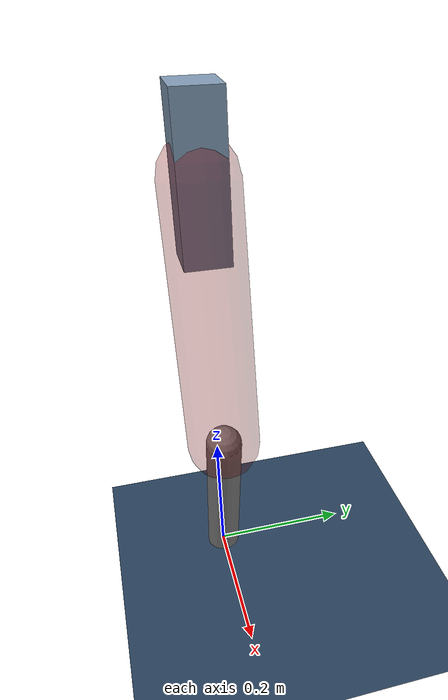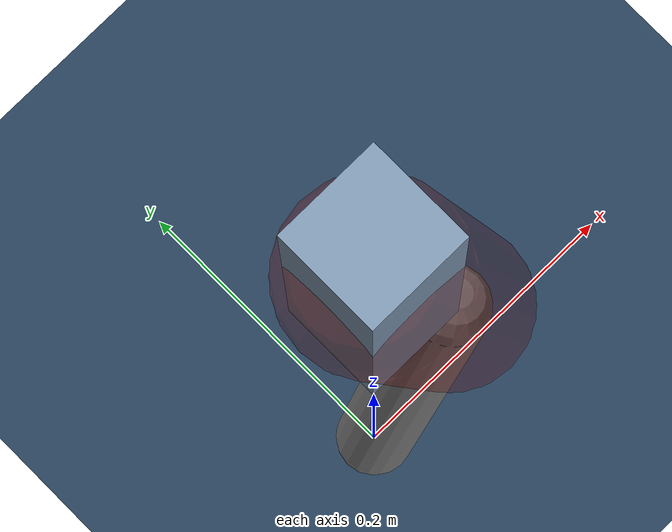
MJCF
<mujoco model="Hopper2D">
	<compiler inertiafromgeom="true" angle="radian" />
	<option timestep="0.001" integrator="implicit" cone="elliptic" solver="Newton" tolerance="1e-10" />

	<default>
		<geom contype="1" conaffinity="1" condim="3" friction="2 0.005 0.0001" solref="0.005 1" />
		<joint limited="true" damping="0.1" />
	</default>

	<asset>
		<texture name="skybox" type="skybox" builtin="gradient" rgb1=".4 .6 .8" rgb2="0 0 0" width="800" height="800" />
		<texture name="grid" type="2d" builtin="checker" rgb1=".1 .2 .3" rgb2=".2 .3 .4" width="300" height="300" mark="edge" markrgb=".2 .3 .4" />
		<material name="ground" texture="grid" texrepeat="1 1" texuniform="true" reflectance="0.1" />
		<material name="leg" rgba="0.5 0.6 0.7 1" />
	</asset>

	<worldbody>

		<geom name="floor" type="plane" size="5 5 0.25" material="ground" />

		<light directional="false" diffuse="0.8 0.8 0.8" specular="0.3 0.3 0.3" pos="0 0 2" dir="0 0 -1" />
		<light mode="targetbodycom" target="base" directional="false" diffuse="0.8 0.8 0.8" specular="0.3 0.3 0.3" pos="0 0 2" dir="0 0 -1" />

		<camera name="fixed" pos="0 -2 1" xyaxes="1 0 0 0 0 1" />
		<camera name="tracking" mode="trackcom" pos="0 -3 1" />

		<body name="root" pos="0 0 0.5999910211169324">
			<joint name="slide_x" type="slide" axis="1 0 0" range="-100 100" />
			<joint name="slide_z" type="slide" axis="0 0 1" range="0 10" />

			<body name="base" pos="0 0 0">
				<geom name="torso" type="box" size="0.03 0.03 0.1" mass="3.052" material="leg" />

				<body name="link1" pos="0 0 0" euler="0 1.393052712700689 0">
					<joint type="hinge" axis="0 -1 0" pos="0 0 0" name="hinge1" limited="true" range="-3.14 3.14" stiffness="0" damping="0.1" />
					<geom name="thigh" type="capsule" fromto="0 0 0 0.34899759498340477 0 0" size="0.05" rgba="0.5 0 0 0.3" mass="1.1238932659535332" />

					<body name="link2" pos="0.34899759498340477 0 0" euler="0 0.4138338998517634 0">
						<joint type="hinge" axis="0 -1 0" pos="0 0 0" name="hinge2" limited="true" range="-3.14 3.14" stiffness="0" damping="0.1" />
						<geom name="shank" type="capsule" fromto="0 0 0 0.2638099465144924 0 0" size="0.025" mass="0.45384795721159393" />

					</body>
				</body>
			</body>
		</body>
	</worldbody>

	<actuator>
		<motor name="torque1" joint="hinge1" ctrlrange="-154.91064140430575 154.91064140430575" ctrllimited="true" gear="1" />
		<motor name="torque2" joint="hinge2" ctrlrange="-66.36183303574289 66.36183303574289" ctrllimited="true" gear="1" />
	</actuator>
</mujoco>
